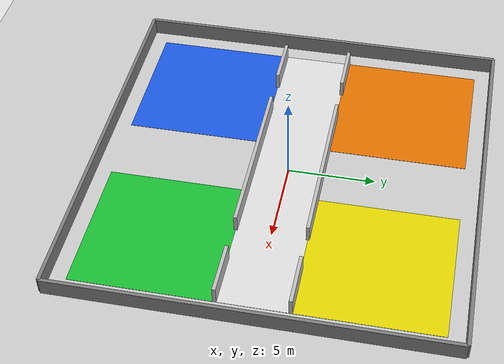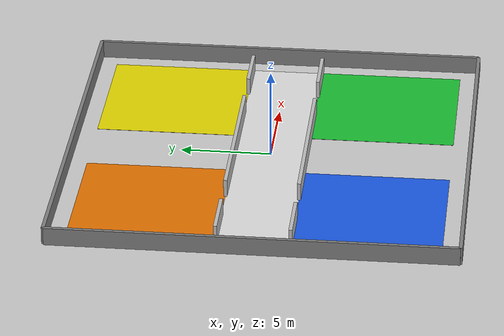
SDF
<?xml version="1.0"?>
<sdf version="1.6">
  <world name="hospital">
    <include><uri>model://ground_plane</uri></include>
    <include><uri>model://sun</uri></include>
    <physics type="ode">
      <real_time_update_rate>1000</real_time_update_rate>
      <max_step_size>0.001</max_step_size>
    </physics>
    <!-- RECEPTION (NW) — orange — VISUAL ONLY, NO COLLISION -->
    <model name="RECEPTION">
      <static>true</static>
      <pose>-6 6 0.005 0 0 0</pose>
      <link name="body">
        <visual name="v">
          <geometry><box><size>8 8 0.01</size></box></geometry>
          <material><ambient>0.9 0.45 0.0 1</ambient><diffuse>0.9 0.45 0.0 1</diffuse></material>
        </visual>
        <!-- NO COLLISION TAG - robot drives through -->
      </link>
    </model>
    <!-- ICU (NE) — yellow — VISUAL ONLY, NO COLLISION -->
    <model name="ICU">
      <static>true</static>
      <pose>6 6 0.005 0 0 0</pose>
      <link name="body">
        <visual name="v">
          <geometry><box><size>8 8 0.01</size></box></geometry>
          <material><ambient>0.9 0.85 0.0 1</ambient><diffuse>0.9 0.85 0.0 1</diffuse></material>
        </visual>
        <!-- NO COLLISION TAG - robot drives through -->
      </link>
    </model>
    <!-- WARD (SW) — blue — VISUAL ONLY, NO COLLISION -->
    <model name="WARD">
      <static>true</static>
      <pose>-6 -6 0.005 0 0 0</pose>
      <link name="body">
        <visual name="v">
          <geometry><box><size>8 8 0.01</size></box></geometry>
          <material><ambient>0.1 0.35 0.9 1</ambient><diffuse>0.1 0.35 0.9 1</diffuse></material>
        </visual>
        <!-- NO COLLISION TAG - robot drives through -->
      </link>
    </model>
    <!-- PHARMACY (SE) — green — VISUAL ONLY, NO COLLISION -->
    <model name="PHARMACY">
      <static>true</static>
      <pose>6 -6 0.005 0 0 0</pose>
      <link name="body">
        <visual name="v">
          <geometry><box><size>8 8 0.01</size></box></geometry>
          <material><ambient>0.1 0.75 0.2 1</ambient><diffuse>0.1 0.75 0.2 1</diffuse></material>
        </visual>
        <!-- NO COLLISION TAG - robot drives through -->
      </link>
    </model>
    <!-- CORRIDOR WALLS at y=+2 and y=-2 (these HAVE collision) -->
    <!-- North wall west segment: x=-10 to x=-7 -->
    <model name="wall_n_west">
      <static>true</static>
      <pose>-8.5 2 0.5 0 0 0</pose>
      <link name="body">
        <visual name="v">
          <geometry><box><size>3 0.2 1</size></box></geometry>
          <material><ambient>0.75 0.75 0.75 1</ambient></material>
        </visual>
        <collision name="c">
          <geometry><box><size>3 0.2 1</size></box></geometry>
        </collision>
      </link>
    </model>
    <!-- North wall centre segment: x=-5 to x=+5 -->
    <model name="wall_n_centre">
      <static>true</static>
      <pose>0 2 0.5 0 0 0</pose>
      <link name="body">
        <visual name="v">
          <geometry><box><size>10 0.2 1</size></box></geometry>
          <material><ambient>0.75 0.75 0.75 1</ambient></material>
        </visual>
        <collision name="c">
          <geometry><box><size>10 0.2 1</size></box></geometry>
        </collision>
      </link>
    </model>
    <!-- North wall east segment: x=+7 to x=+10 -->
    <model name="wall_n_east">
      <static>true</static>
      <pose>8.5 2 0.5 0 0 0</pose>
      <link name="body">
        <visual name="v">
          <geometry><box><size>3 0.2 1</size></box></geometry>
          <material><ambient>0.75 0.75 0.75 1</ambient></material>
        </visual>
        <collision name="c">
          <geometry><box><size>3 0.2 1</size></box></geometry>
        </collision>
      </link>
    </model>
    <!-- South wall west segment: x=-10 to x=-7 -->
    <model name="wall_s_west">
      <static>true</static>
      <pose>-8.5 -2 0.5 0 0 0</pose>
      <link name="body">
        <visual name="v">
          <geometry><box><size>3 0.2 1</size></box></geometry>
          <material><ambient>0.75 0.75 0.75 1</ambient></material>
        </visual>
        <collision name="c">
          <geometry><box><size>3 0.2 1</size></box></geometry>
        </collision>
      </link>
    </model>
    <!-- South wall centre segment: x=-5 to x=+5 -->
    <model name="wall_s_centre">
      <static>true</static>
      <pose>0 -2 0.5 0 0 0</pose>
      <link name="body">
        <visual name="v">
          <geometry><box><size>10 0.2 1</size></box></geometry>
          <material><ambient>0.75 0.75 0.75 1</ambient></material>
        </visual>
        <collision name="c">
          <geometry><box><size>10 0.2 1</size></box></geometry>
        </collision>
      </link>
    </model>
    <!-- South wall east segment: x=+7 to x=+10 -->
    <model name="wall_s_east">
      <static>true</static>
      <pose>8.5 -2 0.5 0 0 0</pose>
      <link name="body">
        <visual name="v">
          <geometry><box><size>3 0.2 1</size></box></geometry>
          <material><ambient>0.75 0.75 0.75 1</ambient></material>
        </visual>
        <collision name="c">
          <geometry><box><size>3 0.2 1</size></box></geometry>
        </collision>
      </link>
    </model>
    <!-- Corridor floor (visual only, no collision) -->
    <model name="corridor_floor">
      <static>true</static>
      <pose>0 0 0.003 0 0 0</pose>
      <link name="body">
        <visual name="v">
          <geometry><box><size>20 4 0.01</size></box></geometry>
          <material><ambient>0.88 0.88 0.88 1</ambient></material>
        </visual>
        <!-- NO COLLISION TAG - just a visual floor marker -->
      </link>
    </model>
    <!-- BOUNDARY WALLS — prevent robot escaping the map -->
    <!-- East boundary wall (x=+11) — full height spans corridor + rooms -->
    <model name="wall_east_boundary">
      <static>true</static>
      <pose>11 0 0.5 0 0 0</pose>
      <link name="body">
        <visual name="v">
          <geometry><box><size>0.2 22 1</size></box></geometry>
          <material><ambient>0.5 0.5 0.5 1</ambient></material>
        </visual>
        <collision name="c">
          <geometry><box><size>0.2 22 1</size></box></geometry>
        </collision>
      </link>
    </model>
    <!-- West boundary wall (x=-11) -->
    <model name="wall_west_boundary">
      <static>true</static>
      <pose>-11 0 0.5 0 0 0</pose>
      <link name="body">
        <visual name="v">
          <geometry><box><size>0.2 22 1</size></box></geometry>
          <material><ambient>0.5 0.5 0.5 1</ambient></material>
        </visual>
        <collision name="c">
          <geometry><box><size>0.2 22 1</size></box></geometry>
        </collision>
      </link>
    </model>
    <!-- North boundary wall (y=+11) -->
    <model name="wall_north_boundary">
      <static>true</static>
      <pose>0 11 0.5 0 0 0</pose>
      <link name="body">
        <visual name="v">
          <geometry><box><size>22 0.2 1</size></box></geometry>
          <material><ambient>0.5 0.5 0.5 1</ambient></material>
        </visual>
        <collision name="c">
          <geometry><box><size>22 0.2 1</size></box></geometry>
        </collision>
      </link>
    </model>
    <!-- South boundary wall (y=-11) -->
    <model name="wall_south_boundary">
      <static>true</static>
      <pose>0 -11 0.5 0 0 0</pose>
      <link name="body">
        <visual name="v">
          <geometry><box><size>22 0.2 1</size></box></geometry>
          <material><ambient>0.5 0.5 0.5 1</ambient></material>
        </visual>
        <collision name="c">
          <geometry><box><size>22 0.2 1</size></box></geometry>
        </collision>
      </link>
    </model>
  </world>
</sdf>
